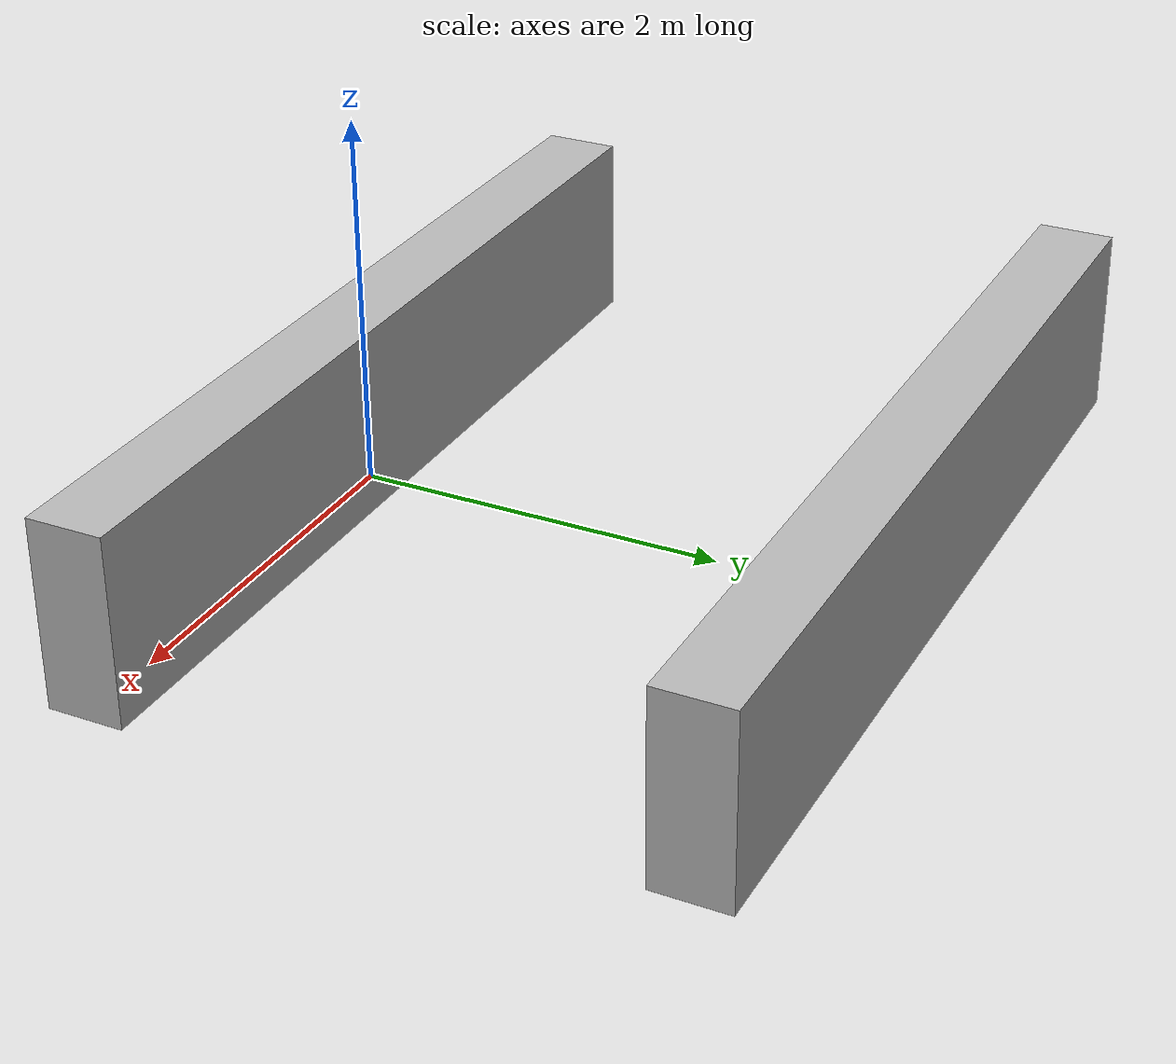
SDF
<?xml version="1.0" ?>

<sdf version="1.5">
	<model name="binaries">
		<link name='left_binary'>
			<!-- Initial box position in its center -->
			<pose>0.0 0.0 0.5 0 0 0</pose>
			<collision name='collision'>
				<geometry>
					<box>
					<!--  length = 5
						width = 0.4
						height = 1.0 -->
						<size>5.0 0.4 1.0</size>
					</box>
				</geometry>
			</collision>
			<visual name='visual'>
				<geometry>
					<box>
					<size>5.0 0.4 1.0</size>
					</box>
				</geometry>
			</visual>
		</link>
			<link name='right_binary'>
			<pose>0.0 3.0 0.5 0 0 0</pose>
			<collision name='collision'>
				<geometry>
					<box>
						<size>5.0 0.4 1.0</size>
					</box>
				</geometry>
			</collision>
			<visual name='visual'>
				<geometry>
					<box>
					<size>5.0 0.4 1.0</size>
					</box>
				</geometry>
			</visual>
		</link>
    </model>
</sdf>
